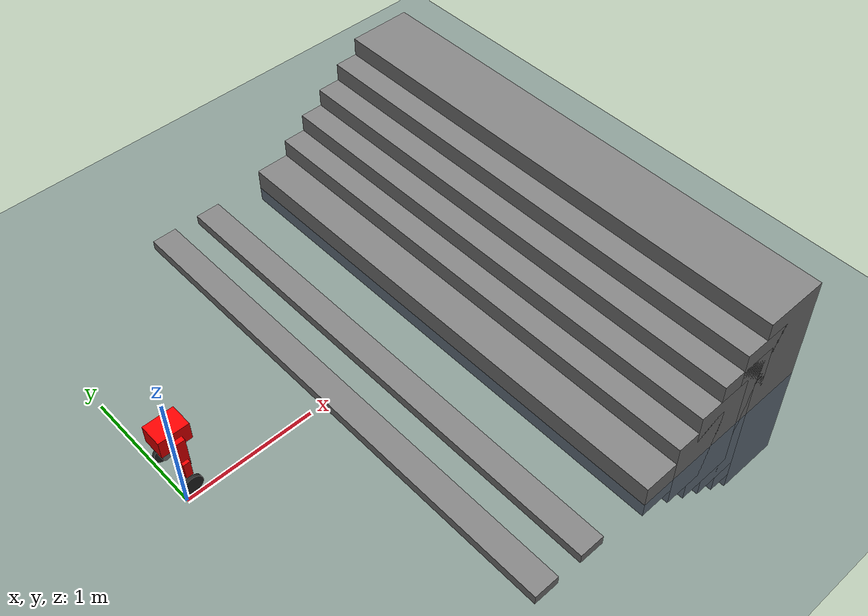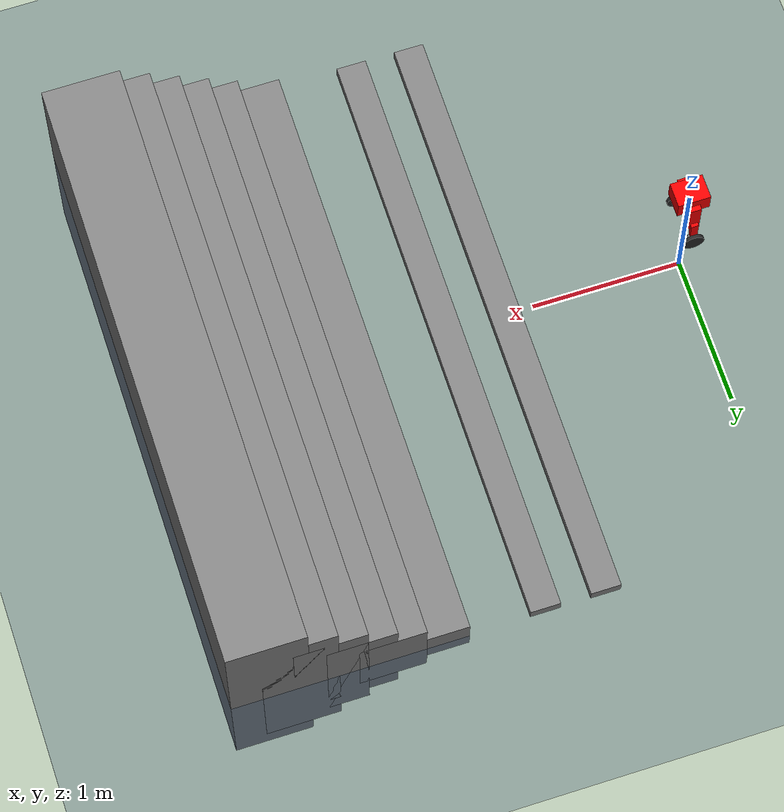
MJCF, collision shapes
<?xml version="1.0" encoding="utf-8"?>
<mujoco model="bipedwheel_full">

  <!-- 角度單位用弧度；mesh 去同層的 meshes/ 找；joint 範圍自動推導 -->
  <compiler angle="radian" meshdir="meshes" autolimits="true"/>

  <!-- 摩擦錐用橢圓模型，impratio 調高讓接觸比較不會打滑 -->
  <option cone="elliptic" impratio="100"/>

  <!-- 相機自動取景的中心與範圍 -->
  <statistic center="0 0 0.1" extent="0.8"/>

  <visual>
    <headlight diffuse="0.6 0.6 0.6" ambient="0.3 0.3 0.3" specular="0 0 0"/>
    <rgba haze="0.15 0.25 0.35 1"/>
    <global azimuth="-130" elevation="-20"/>
  </visual>

  <!-- ===== 預設值樣板：作用像 CSS 的 class，可以巢狀繼承 ===== -->
  <default>
    <default class="biped_wheel">
      <!-- condim="1" = 只算垂直撐住的力、沒有摩擦力（像踩在冰上） -->
      <geom friction="0.4" margin="0.001" condim="1"/>
      <joint damping="0.1" armature="0.01" frictionloss="0.2"/>
      <motor ctrlrange="-23.7 23.7"/>

      <default class="thigh">
        <joint axis="0 1 0" range="0 2.1"/>
        <motor ctrlrange="-23.7 23.7"/>
      </default>

      <default class="calf">
        <joint axis="0 1 0" range="-3.3 0"/>
        <motor ctrlrange="-23.7 23.7"/>
      </default>

      <!-- 外觀：contype/conaffinity 都是 0 → 完全不參與碰撞，只是好看 -->
      <default class="visual">
        <geom type="mesh" contype="0" conaffinity="0" group="2"/>
      </default>

      <!-- 碰撞體：group 3，半透明紅色。預設是隱藏的，用 my_collision_view.py 看 -->
      <default class="collision">
        <geom group="3" type="mesh" rgba="1 0 0 0.3"/>

        <!-- 輪子是唯一有完整摩擦力的地方：condim=6、priority=1 蓋過對手 -->
        <default class="wheel">
          <geom size="0.022" priority="1" condim="6" friction="0.8 0.02 0.01"/>
        </default>
      </default>
    </default>
  </default>

  <!-- ===== 素材：地面材質（原本在 scene.xml）＋ 8 個 STL（原本在 bipedwheel.xml） ===== -->
  <asset>
    <texture type="skybox" builtin="gradient" rgb1="0.3 0.5 0.7" rgb2="0 0 0" width="512" height="3072"/>
    <texture type="2d" name="groundplane" builtin="checker" mark="edge" rgb1="0.2 0.3 0.4" rgb2="0.1 0.2 0.3"
      markrgb="0.8 0.8 0.8" width="300" height="300"/>
    <material name="groundplane" texture="groundplane" texuniform="true" texrepeat="5 5" reflectance="0.2"/>

    <mesh name="base_link" file="base_link.STL"/>
    <mesh name="R_thigh_link" file="R_thigh_link.STL"/>
    <mesh name="R_calf_link" file="R_calf_link.STL"/>
    <mesh name="R_wheel_link" file="R_wheel_link.STL"/>
    <mesh name="L_thigh_link" file="L_thigh_link.STL"/>
    <mesh name="L_calf_link" file="L_calf_link.STL"/>
    <mesh name="L_wheel_link" file="L_wheel_link.STL"/>
    <mesh name="battery" file="battery.STL"/>
  </asset>

  <worldbody>
    <light pos="0 0 1.5" dir="0 0 -1" directional="true"/>
    <geom name="floor" size="0 0 0.05" type="plane" material="groundplane"/>

    <!-- ===== 障礙物與台階（老師原本註解掉，這裡啟用）=====
         size 是「半長」：0.1 2 0.04 代表 0.2 長 × 4 寬 × 0.08 高。
         機器人起點在 x=0，這些擋在 x=1.2 到 x=3.4，愈後面愈高。 -->
    <geom name="bump_1"  pos="1.2 0 0.04" type="box" size="0.1 2 0.04"  quat="1 0 0 0"/>
    <geom name="bump_2"  pos="1.6 0 0.04" type="box" size="0.1 2 0.04"  quat="1 0 0 0"/>

    <geom name="stair_1" pos="2.3 0 0.02" type="box" size="0.2 2 0.15"  quat="1 0 0 0"/>
    <geom name="stair_2" pos="2.6 0 0.02" type="box" size="0.22 2 0.3"  quat="1 0 0 0"/>
    <geom name="stair_3" pos="2.8 0 0.02" type="box" size="0.23 2 0.45" quat="1 0 0 0"/>
    <geom name="stair_4" pos="3.0 0 0.02" type="box" size="0.24 2 0.6"  quat="1 0 0 0"/>
    <geom name="stair_5" pos="3.2 0 0.02" type="box" size="0.25 2 0.75" quat="1 0 0 0"/>
    <geom name="stair_6" pos="3.4 0 0.02" type="box" size="0.26 2 0.9"  quat="1 0 0 0"/>

    <!-- ===== 機器人本體 ===== -->
    <body name="base_link" pos="0 -0.0762001 0.8" childclass="biped_wheel">
      <inertial pos="-0.03497 7.1375E-05 0.055169" quat="1 0 0 0" mass="2.327" diaginertia="0.010702 0.010715 0.014614"/>

      <!-- ★ 這一行是關鍵：機身相對世界的 6 個自由度（3 移動 + 3 旋轉） -->
      <freejoint/>

      <!-- IMU 掛的位置。site 沒有形狀也沒有質量，純粹是個標記點 -->
      <site name="imu" pos="0 0 0"/>

      <geom type="mesh" contype="0" conaffinity="0" group="1" density="0" rgba="0.156863 0.156863 0.156863 1" mesh="base_link"/>
      <geom size="0.1085 0.082 0.07" pos="-0.036 0 0.058" type="box" class="collision"/>

      <body name="battery" pos="0 0 0">
        <inertial pos="-0.0775 -1.96e-05 0.055503" quat="1 0 0 0" mass="0.68" diaginertia="0.001214 0.000415 0.000978"/>
        <geom type="mesh" contype="0" conaffinity="0" group="1" density="0" rgba="0.247059 0.247059 0.247059 1" mesh="battery"/>
      </body>

      <!-- ---------- 右腿 ---------- -->
      <body name="R_thigh_link" pos="-0.0341458 -0.0849999 0.0485">
        <inertial pos="-0.00116866 -0.0168014 -0.141575" quat="0.694626 -0.0171555 0.0223094 0.71882" mass="0.79" diaginertia="0.00401836 0.00364268 0.00052296"/>
        <joint name="R_thigh_joint" class="thigh"/>
        <geom type="mesh" contype="0" conaffinity="0" group="1" density="0" rgba="0.145098 0.145098 0.145098 1" mesh="R_thigh_link"/>
        <geom size="0.04 0.0175 0.125" pos="0 -0.0175 -0.104" type="box" class="collision"/>

        <body name="R_calf_link" pos="6.23304e-05 -0.0383 -0.18">
          <inertial pos="-0.0001318 -0.0152534 -0.11185" quat="0.706227 -0.0114844 0.0119533 0.707791" mass="0.624823" diaginertia="0.00520652 0.00517913 0.000193779"/>
          <joint name="R_calf_joint" class="calf"/>
          <geom type="mesh" contype="0" conaffinity="0" group="1" density="0" rgba="0.145098 0.145098 0.145098 1" mesh="R_calf_link"/>
          <geom size="0.025 0.0118 0.065" pos="0 -0.0118 -0.04" type="box" class="collision"/>
          <!-- 膝蓋那顆 FOC 馬達殼：沒有 class，所以掉在 group 0，但照樣會碰撞 -->
          <geom size="0.03 0.015" pos="0 -0.00255 -0.18" quat="0.707388 0.706825 0 0" type="cylinder"/>

          <body name="R_wheel_link" pos="0 -0.04255 -0.18">
            <inertial pos="-6.2331e-05 0.00898741 -1.05886e-08" quat="0.707107 0 0 0.707107" mass="0.3" diaginertia="0.000934 0.00048 0.00048"/>
            <joint name="R_wheel_joint" pos="0 0 0" axis="0 1 0" actuatorfrcrange="-3.69 3.69"/>
            <geom type="mesh" contype="0" conaffinity="0" group="1" density="0" rgba="0.152941 0.152941 0.152941 1" mesh="R_wheel_link"/>
            <geom size="0.07 0.0115" pos="0 0.01 0" quat="0.707388 0.706825 0 0" type="cylinder" rgba="0.152941 0.152941 0.152941 1" class="wheel"/>
          </body>
        </body>
      </body>

      <!-- ---------- 左腿（跟右腿鏡像對稱）---------- -->
      <body name="L_thigh_link" pos="-0.0341458 0.0850001 0.0485">
        <inertial pos="-0.00111964 0.0168014 -0.141576" quat="0.71882 0.0223094 -0.0171555 0.694626" mass="0.79" diaginertia="0.00401836 0.00364268 0.00052296"/>
        <joint name="L_thigh_joint" class="thigh"/>
        <geom type="mesh" contype="0" conaffinity="0" group="1" density="0" rgba="0.145098 0.145098 0.145098 1" mesh="L_thigh_link"/>
        <geom size="0.04 0.0175 0.125" pos="0 0.0175 -0.104" type="box" class="collision"/>

        <body name="L_calf_link" pos="6.23304e-05 0.0383 -0.18">
          <inertial pos="-9.65115e-05 0.0152581 -0.111914" quat="0.707119 0.0120204 -0.0115411 0.706899" mass="0.624823" diaginertia="0.00521172 0.00518528 0.000193726"/>
          <joint name="L_calf_joint" class="calf"/>
          <geom type="mesh" contype="0" conaffinity="0" group="1" density="0" rgba="0.145098 0.145098 0.145098 1" mesh="L_calf_link"/>
          <geom size="0.025 0.0118 0.065" pos="0 0.0118 -0.04" type="box" class="collision"/>
          <geom size="0.03 0.015" pos="0 0.00255 -0.18" quat="0.707388 -0.706825 0 0" type="cylinder"/>

          <body name="L_wheel_link" pos="0 0.04255 -0.18">
            <inertial pos="-8.11407e-10 -0.00898741 2.81785e-10" quat="0.707107 0 0 0.707107" mass="0.3" diaginertia="0.000934 0.00048 0.00048"/>
            <joint name="L_wheel_joint" pos="0 0 0" axis="0 1 0" actuatorfrcrange="-3.69 3.69"/>
            <geom type="mesh" contype="0" conaffinity="0" group="1" density="0" rgba="0.152941 0.152941 0.152941 1" mesh="L_wheel_link"/>
            <geom size="0.07 0.0115" pos="0 -0.01 0" quat="0.707388 -0.706825 0 0" type="cylinder" rgba="0.152941 0.152941 0.152941 1" class="wheel"/>
          </body>
        </body>
      </body>
    </body>
  </worldbody>

  <!-- ===== 馬達：這裡的順序 = data.ctrl[0..5] 的順序 ===== -->
  <actuator>
    <motor class="thigh" name="L_thigh" joint="L_thigh_joint"/>
    <motor class="calf"  name="L_calf"  joint="L_calf_joint"/>
    <motor ctrlrange="-15 15" name="L_wheel" joint="L_wheel_joint"/>

    <motor class="thigh" name="R_thigh" joint="R_thigh_joint"/>
    <motor class="calf"  name="R_calf"  joint="R_calf_joint"/>
    <motor ctrlrange="-15 15" name="R_wheel" joint="R_wheel_joint"/>
  </actuator>

  <!-- ===== 感測器：這裡的順序 = data.sensordata[0..36] 的順序 =====
       0–5 位置 / 6–11 速度 / 12–17 力矩 / 18–21 姿態 / 22–24 角速度
       25–27 加速度 / 28–30 機身位置 / 31–33 線速度 / 34–36 角速度 -->
  <sensor>
    <jointpos name="L_thigh_pos" joint="L_thigh_joint"/>
    <jointpos name="L_calf_pos"  joint="L_calf_joint"/>
    <jointpos name="L_wheel_pos" joint="L_wheel_joint"/>
    <jointpos name="R_thigh_pos" joint="R_thigh_joint"/>
    <jointpos name="R_calf_pos"  joint="R_calf_joint"/>
    <jointpos name="R_wheel_pos" joint="R_wheel_joint"/>

    <jointvel name="L_thigh_vel" joint="L_thigh_joint"/>
    <jointvel name="L_calf_vel"  joint="L_calf_joint"/>
    <jointvel name="L_wheel_vel" joint="L_wheel_joint" noise="0.0"/>
    <jointvel name="R_thigh_vel" joint="R_thigh_joint"/>
    <jointvel name="R_calf_vel"  joint="R_calf_joint"/>
    <jointvel name="R_wheel_vel" joint="R_wheel_joint" noise="0.0"/>

    <jointactuatorfrc name="L_thigh_torque" joint="L_thigh_joint" noise="0.01"/>
    <jointactuatorfrc name="L_calf_torque"  joint="L_calf_joint"  noise="0.01"/>
    <jointactuatorfrc name="L_wheel_torque" joint="L_wheel_joint"/>
    <jointactuatorfrc name="R_thigh_torque" joint="R_thigh_joint" noise="0.01"/>
    <jointactuatorfrc name="R_calf_torque"  joint="R_calf_joint"  noise="0.01"/>
    <jointactuatorfrc name="R_wheel_torque" joint="R_wheel_joint"/>

    <framequat name="imu_quat" objtype="site" objname="imu" noise="0.0"/>
    <gyro name="imu_gyro" site="imu" noise="0.0"/>
    <accelerometer name="imu_acc" site="imu"/>

    <framepos    name="frame_pos"     objtype="site" objname="imu"/>
    <framelinvel name="frame_lin_vel" objtype="site" objname="imu"/>
    <frameangvel name="frame_ang_vel" objtype="site" objname="imu"/>
  </sensor>

  <!-- ===== 起始姿勢 =====
       qpos 13 個數字 = 機身位置 3 + 機身姿態四元數 4 + 六個關節 6
       ctrl 6 個數字 = 六個馬達的初始指令 -->
  <keyframe>
    <key name="home"
         qpos="0 0 0.2  1 0 0 0  1.22 -1.92 0 1.22 -1.92 0"
         ctrl="1.22 -1.92 0 1.22 -1.92 0"/>
  </keyframe>

</mujoco>
